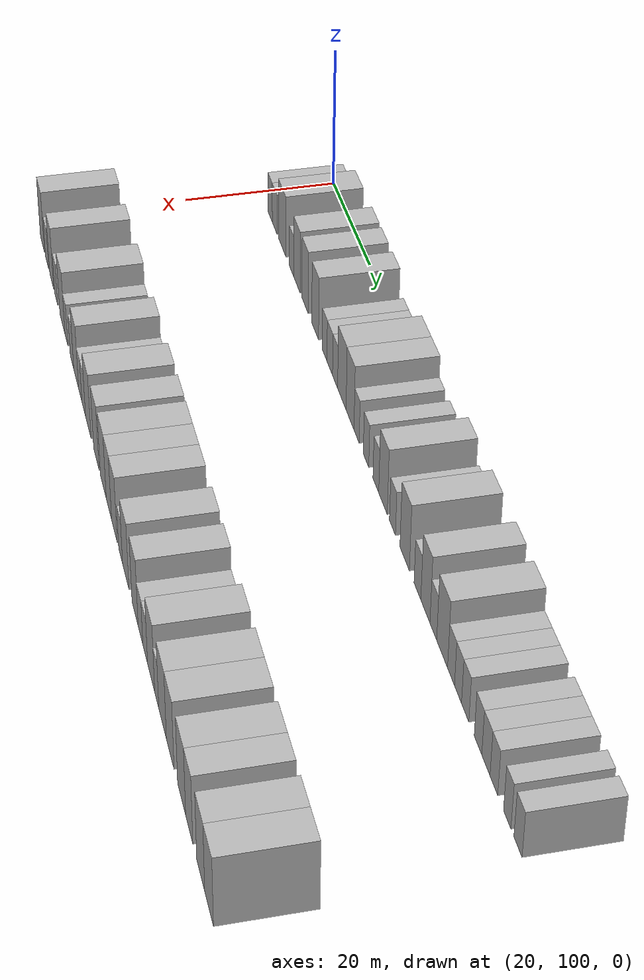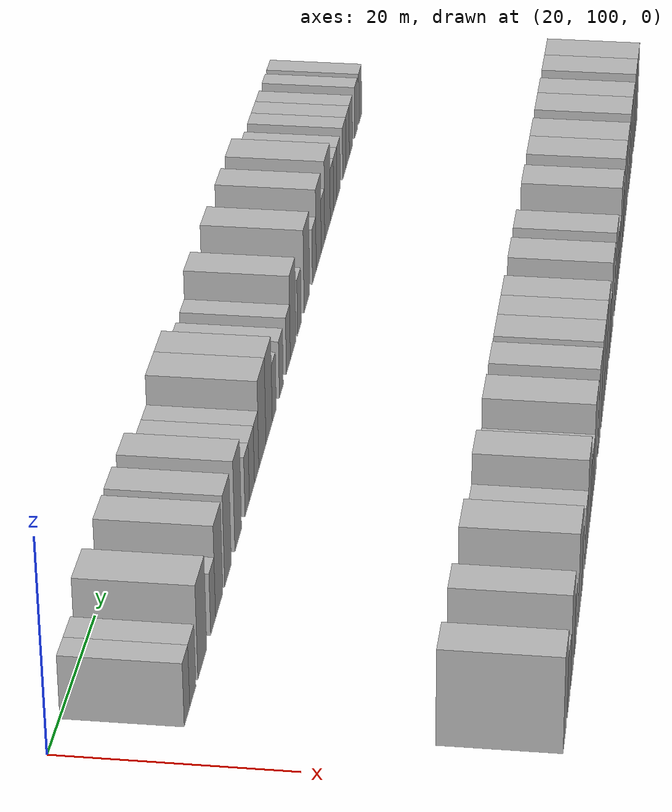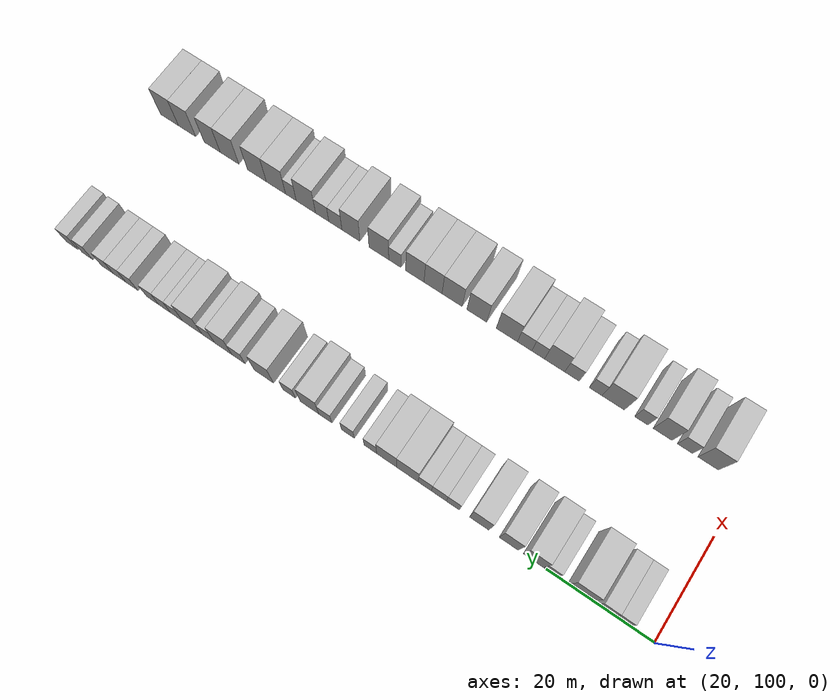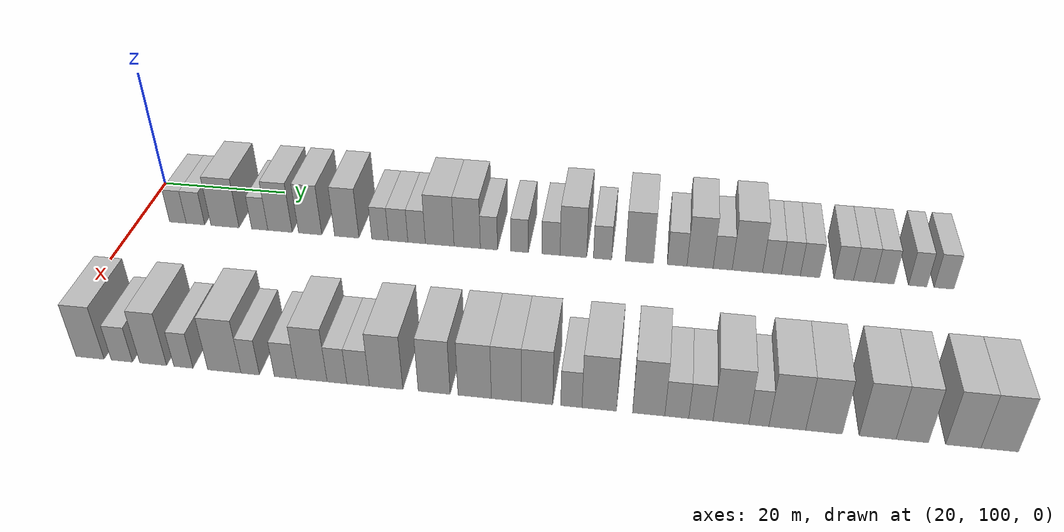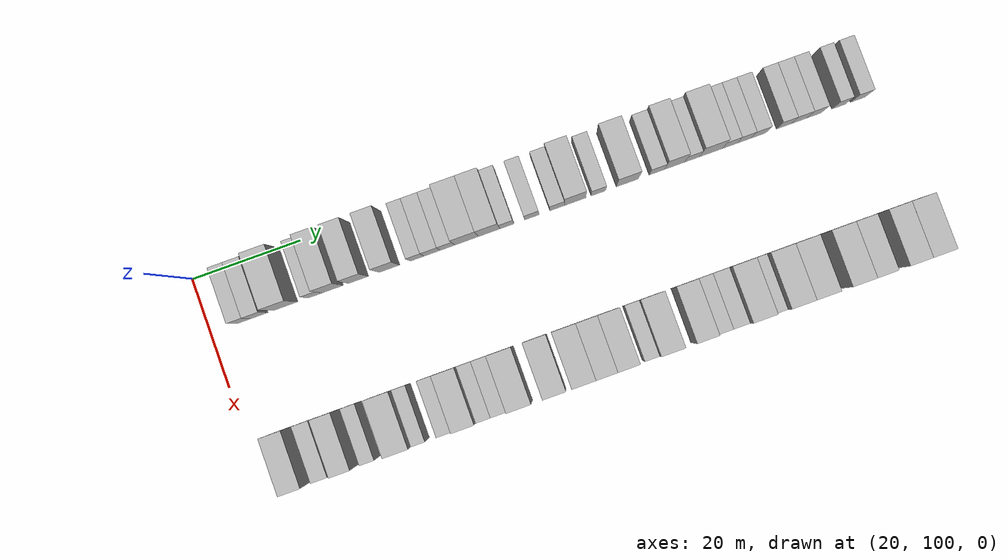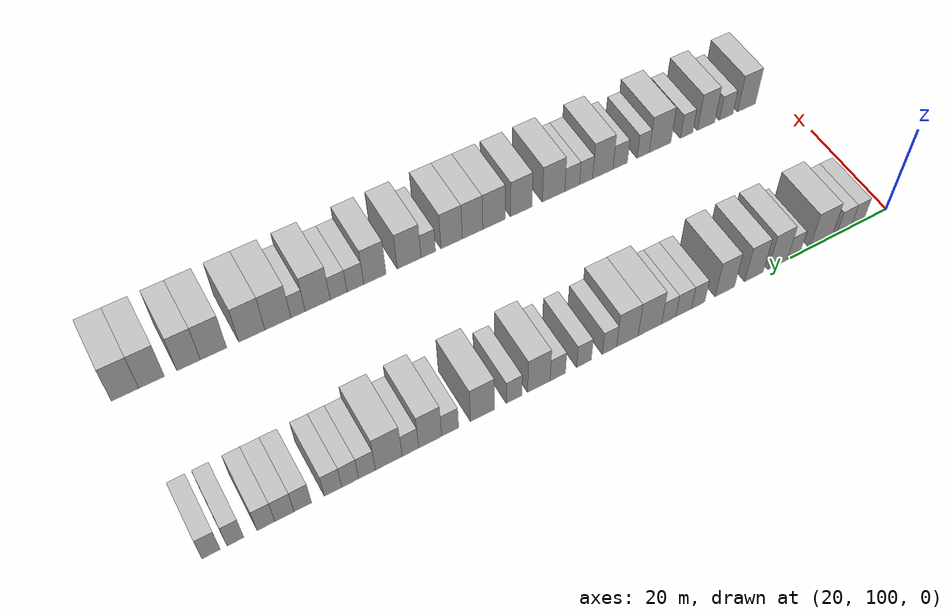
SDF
<sdf version="1.6">
 <world name="default">
  <model name="building_87">
   <static>1</static>
   <pose>25.0000 106.2497 0 0.000000 0.000000 0.000000</pose>
   <link name="link">
    <pose>0 0 3.00 0 0 0</pose>
    <collision name="collision"><geometry><box><size>10.0000 2.6665 6.0000</size></box></geometry></collision>
    <visual name="visual">
     <cast_shadows>0</cast_shadows>
     <geometry><box><size>10.0000 2.6665 6.0000</size></box></geometry>
     <material>
      <script>
       <uri>model://HANNAS_wall/materials/scripts</uri>
       <uri>model://HANNAS_wall/materials/textures</uri>
       <name>vrc/HANNAS_wall</name>
      </script>
     </material>
    </visual>
   </link>
  </model>
  <model name="building_88">
   <static>1</static>
   <pose>25.0000 109.0697 0 0.000000 0.000000 0.000000</pose>
   <link name="link">
    <pose>0 0 3.00 0 0 0</pose>
    <collision name="collision"><geometry><box><size>10.0000 2.9735 6.0000</size></box></geometry></collision>
    <visual name="visual">
     <cast_shadows>0</cast_shadows>
     <geometry><box><size>10.0000 2.9735 6.0000</size></box></geometry>
     <material>
      <script>
       <uri>model://HANNAS_wall/materials/scripts</uri>
       <uri>model://HANNAS_wall/materials/textures</uri>
       <name>vrc/HANNAS_wall</name>
      </script>
     </material>
    </visual>
   </link>
  </model>
  <model name="building_89">
   <static>1</static>
   <pose>25.0000 113.8046 0 0.000000 0.000000 0.000000</pose>
   <link name="link">
    <pose>0 0 4.50 0 0 0</pose>
    <collision name="collision"><geometry><box><size>10.0000 4.4964 9.0000</size></box></geometry></collision>
    <visual name="visual">
     <cast_shadows>0</cast_shadows>
     <geometry><box><size>10.0000 4.4964 9.0000</size></box></geometry>
     <material>
      <script>
       <uri>model://HANNAS_wall/materials/scripts</uri>
       <uri>model://HANNAS_wall/materials/textures</uri>
       <name>vrc/HANNAS_wall</name>
      </script>
     </material>
    </visual>
   </link>
  </model>
  <model name="building_90">
   <static>1</static>
   <pose>25.0000 119.3390 0 0.000000 0.000000 0.000000</pose>
   <link name="link">
    <pose>0 0 3.00 0 0 0</pose>
    <collision name="collision"><geometry><box><size>10.0000 2.5724 6.0000</size></box></geometry></collision>
    <visual name="visual">
     <cast_shadows>0</cast_shadows>
     <geometry><box><size>10.0000 2.5724 6.0000</size></box></geometry>
     <material>
      <script>
       <uri>model://HANNAS_wall/materials/scripts</uri>
       <uri>model://HANNAS_wall/materials/textures</uri>
       <name>vrc/HANNAS_wall</name>
      </script>
     </material>
    </visual>
   </link>
  </model>
  <model name="building_91">
   <static>1</static>
   <pose>25.0000 122.5465 0 0.000000 0.000000 0.000000</pose>
   <link name="link">
    <pose>0 0 4.50 0 0 0</pose>
    <collision name="collision"><geometry><box><size>10.0000 3.8426 9.0000</size></box></geometry></collision>
    <visual name="visual">
     <cast_shadows>0</cast_shadows>
     <geometry><box><size>10.0000 3.8426 9.0000</size></box></geometry>
     <material>
      <script>
       <uri>model://HANNAS_wall/materials/scripts</uri>
       <uri>model://HANNAS_wall/materials/textures</uri>
       <name>vrc/HANNAS_wall</name>
      </script>
     </material>
    </visual>
   </link>
  </model>
  <model name="building_92">
   <static>1</static>
   <pose>25.0000 127.2949 0 0.000000 0.000000 0.000000</pose>
   <link name="link">
    <pose>0 0 4.50 0 0 0</pose>
    <collision name="collision"><geometry><box><size>10.0000 3.6543 9.0000</size></box></geometry></collision>
    <visual name="visual">
     <cast_shadows>0</cast_shadows>
     <geometry><box><size>10.0000 3.6543 9.0000</size></box></geometry>
     <material>
      <script>
       <uri>model://HANNAS_wall/materials/scripts</uri>
       <uri>model://HANNAS_wall/materials/textures</uri>
       <name>vrc/HANNAS_wall</name>
      </script>
     </material>
    </visual>
   </link>
  </model>
  <model name="building_93">
   <static>1</static>
   <pose>25.0000 133.0107 0 0.000000 0.000000 0.000000</pose>
   <link name="link">
    <pose>0 0 4.50 0 0 0</pose>
    <collision name="collision"><geometry><box><size>10.0000 3.7772 9.0000</size></box></geometry></collision>
    <visual name="visual">
     <cast_shadows>0</cast_shadows>
     <geometry><box><size>10.0000 3.7772 9.0000</size></box></geometry>
     <material>
      <script>
       <uri>model://HANNAS_wall/materials/scripts</uri>
       <uri>model://HANNAS_wall/materials/textures</uri>
       <name>vrc/HANNAS_wall</name>
      </script>
     </material>
    </visual>
   </link>
  </model>
  <model name="building_94">
   <static>1</static>
   <pose>25.0000 138.1841 0 0.000000 0.000000 0.000000</pose>
   <link name="link">
    <pose>0 0 3.00 0 0 0</pose>
    <collision name="collision"><geometry><box><size>10.0000 2.5696 6.0000</size></box></geometry></collision>
    <visual name="visual">
     <cast_shadows>0</cast_shadows>
     <geometry><box><size>10.0000 2.5696 6.0000</size></box></geometry>
     <material>
      <script>
       <uri>model://HANNAS_wall/materials/scripts</uri>
       <uri>model://HANNAS_wall/materials/textures</uri>
       <name>vrc/HANNAS_wall</name>
      </script>
     </material>
    </visual>
   </link>
  </model>
  <model name="building_95">
   <static>1</static>
   <pose>25.0000 140.9648 0 0.000000 0.000000 0.000000</pose>
   <link name="link">
    <pose>0 0 3.00 0 0 0</pose>
    <collision name="collision"><geometry><box><size>10.0000 2.9919 6.0000</size></box></geometry></collision>
    <visual name="visual">
     <cast_shadows>0</cast_shadows>
     <geometry><box><size>10.0000 2.9919 6.0000</size></box></geometry>
     <material>
      <script>
       <uri>model://HANNAS_wall/materials/scripts</uri>
       <uri>model://HANNAS_wall/materials/textures</uri>
       <name>vrc/HANNAS_wall</name>
      </script>
     </material>
    </visual>
   </link>
  </model>
  <model name="building_96">
   <static>1</static>
   <pose>25.0000 143.8011 0 0.000000 0.000000 0.000000</pose>
   <link name="link">
    <pose>0 0 3.00 0 0 0</pose>
    <collision name="collision"><geometry><box><size>10.0000 2.6808 6.0000</size></box></geometry></collision>
    <visual name="visual">
     <cast_shadows>0</cast_shadows>
     <geometry><box><size>10.0000 2.6808 6.0000</size></box></geometry>
     <material>
      <script>
       <uri>model://HANNAS_wall/materials/scripts</uri>
       <uri>model://HANNAS_wall/materials/textures</uri>
       <name>vrc/HANNAS_wall</name>
      </script>
     </material>
    </visual>
   </link>
  </model>
  <model name="building_97">
   <static>1</static>
   <pose>25.0000 147.3322 0 0.000000 0.000000 0.000000</pose>
   <link name="link">
    <pose>0 0 4.50 0 0 0</pose>
    <collision name="collision"><geometry><box><size>10.0000 4.3813 9.0000</size></box></geometry></collision>
    <visual name="visual">
     <cast_shadows>0</cast_shadows>
     <geometry><box><size>10.0000 4.3813 9.0000</size></box></geometry>
     <material>
      <script>
       <uri>model://HANNAS_wall/materials/scripts</uri>
       <uri>model://HANNAS_wall/materials/textures</uri>
       <name>vrc/HANNAS_wall</name>
      </script>
     </material>
    </visual>
   </link>
  </model>
  <model name="building_98">
   <static>1</static>
   <pose>25.0000 151.5172 0 0.000000 0.000000 0.000000</pose>
   <link name="link">
    <pose>0 0 4.50 0 0 0</pose>
    <collision name="collision"><geometry><box><size>10.0000 3.9888 9.0000</size></box></geometry></collision>
    <visual name="visual">
     <cast_shadows>0</cast_shadows>
     <geometry><box><size>10.0000 3.9888 9.0000</size></box></geometry>
     <material>
      <script>
       <uri>model://HANNAS_wall/materials/scripts</uri>
       <uri>model://HANNAS_wall/materials/textures</uri>
       <name>vrc/HANNAS_wall</name>
      </script>
     </material>
    </visual>
   </link>
  </model>
  <model name="building_99">
   <static>1</static>
   <pose>25.0000 154.8065 0 0.000000 0.000000 0.000000</pose>
   <link name="link">
    <pose>0 0 3.00 0 0 0</pose>
    <collision name="collision"><geometry><box><size>10.0000 2.5898 6.0000</size></box></geometry></collision>
    <visual name="visual">
     <cast_shadows>0</cast_shadows>
     <geometry><box><size>10.0000 2.5898 6.0000</size></box></geometry>
     <material>
      <script>
       <uri>model://HANNAS_wall/materials/scripts</uri>
       <uri>model://HANNAS_wall/materials/textures</uri>
       <name>vrc/HANNAS_wall</name>
      </script>
     </material>
    </visual>
   </link>
  </model>
  <model name="building_100">
   <static>1</static>
   <pose>25.0000 159.4271 0 0.000000 0.000000 0.000000</pose>
   <link name="link">
    <pose>0 0 3.00 0 0 0</pose>
    <collision name="collision"><geometry><box><size>10.0000 2.6514 6.0000</size></box></geometry></collision>
    <visual name="visual">
     <cast_shadows>0</cast_shadows>
     <geometry><box><size>10.0000 2.6514 6.0000</size></box></geometry>
     <material>
      <script>
       <uri>model://HANNAS_wall/materials/scripts</uri>
       <uri>model://HANNAS_wall/materials/textures</uri>
       <name>vrc/HANNAS_wall</name>
      </script>
     </material>
    </visual>
   </link>
  </model>
  <model name="building_101">
   <static>1</static>
   <pose>25.0000 164.1142 0 0.000000 0.000000 0.000000</pose>
   <link name="link">
    <pose>0 0 3.00 0 0 0</pose>
    <collision name="collision"><geometry><box><size>10.0000 2.7228 6.0000</size></box></geometry></collision>
    <visual name="visual">
     <cast_shadows>0</cast_shadows>
     <geometry><box><size>10.0000 2.7228 6.0000</size></box></geometry>
     <material>
      <script>
       <uri>model://HANNAS_wall/materials/scripts</uri>
       <uri>model://HANNAS_wall/materials/textures</uri>
       <name>vrc/HANNAS_wall</name>
      </script>
     </material>
    </visual>
   </link>
  </model>
  <model name="building_102">
   <static>1</static>
   <pose>25.0000 167.4475 0 0.000000 0.000000 0.000000</pose>
   <link name="link">
    <pose>0 0 4.50 0 0 0</pose>
    <collision name="collision"><geometry><box><size>10.0000 3.9439 9.0000</size></box></geometry></collision>
    <visual name="visual">
     <cast_shadows>0</cast_shadows>
     <geometry><box><size>10.0000 3.9439 9.0000</size></box></geometry>
     <material>
      <script>
       <uri>model://HANNAS_wall/materials/scripts</uri>
       <uri>model://HANNAS_wall/materials/textures</uri>
       <name>vrc/HANNAS_wall</name>
      </script>
     </material>
    </visual>
   </link>
  </model>
  <model name="building_103">
   <static>1</static>
   <pose>25.0000 171.7697 0 0.000000 0.000000 0.000000</pose>
   <link name="link">
    <pose>0 0 3.00 0 0 0</pose>
    <collision name="collision"><geometry><box><size>10.0000 2.7006 6.0000</size></box></geometry></collision>
    <visual name="visual">
     <cast_shadows>0</cast_shadows>
     <geometry><box><size>10.0000 2.7006 6.0000</size></box></geometry>
     <material>
      <script>
       <uri>model://HANNAS_wall/materials/scripts</uri>
       <uri>model://HANNAS_wall/materials/textures</uri>
       <name>vrc/HANNAS_wall</name>
      </script>
     </material>
    </visual>
   </link>
  </model>
  <model name="building_104">
   <static>1</static>
   <pose>25.0000 177.1848 0 0.000000 0.000000 0.000000</pose>
   <link name="link">
    <pose>0 0 4.50 0 0 0</pose>
    <collision name="collision"><geometry><box><size>10.0000 4.1296 9.0000</size></box></geometry></collision>
    <visual name="visual">
     <cast_shadows>0</cast_shadows>
     <geometry><box><size>10.0000 4.1296 9.0000</size></box></geometry>
     <material>
      <script>
       <uri>model://HANNAS_wall/materials/scripts</uri>
       <uri>model://HANNAS_wall/materials/textures</uri>
       <name>vrc/HANNAS_wall</name>
      </script>
     </material>
    </visual>
   </link>
  </model>
  <model name="building_105">
   <static>1</static>
   <pose>25.0000 182.6782 0 0.000000 0.000000 0.000000</pose>
   <link name="link">
    <pose>0 0 3.00 0 0 0</pose>
    <collision name="collision"><geometry><box><size>10.0000 2.8571 6.0000</size></box></geometry></collision>
    <visual name="visual">
     <cast_shadows>0</cast_shadows>
     <geometry><box><size>10.0000 2.8571 6.0000</size></box></geometry>
     <material>
      <script>
       <uri>model://HANNAS_wall/materials/scripts</uri>
       <uri>model://HANNAS_wall/materials/textures</uri>
       <name>vrc/HANNAS_wall</name>
      </script>
     </material>
    </visual>
   </link>
  </model>
  <model name="building_106">
   <static>1</static>
   <pose>25.0000 186.0044 0 0.000000 0.000000 0.000000</pose>
   <link name="link">
    <pose>0 0 4.50 0 0 0</pose>
    <collision name="collision"><geometry><box><size>10.0000 3.7953 9.0000</size></box></geometry></collision>
    <visual name="visual">
     <cast_shadows>0</cast_shadows>
     <geometry><box><size>10.0000 3.7953 9.0000</size></box></geometry>
     <material>
      <script>
       <uri>model://HANNAS_wall/materials/scripts</uri>
       <uri>model://HANNAS_wall/materials/textures</uri>
       <name>vrc/HANNAS_wall</name>
      </script>
     </material>
    </visual>
   </link>
  </model>
  <model name="building_107">
   <static>1</static>
   <pose>25.0000 189.2682 0 0.000000 0.000000 0.000000</pose>
   <link name="link">
    <pose>0 0 3.00 0 0 0</pose>
    <collision name="collision"><geometry><box><size>10.0000 2.7324 6.0000</size></box></geometry></collision>
    <visual name="visual">
     <cast_shadows>0</cast_shadows>
     <geometry><box><size>10.0000 2.7324 6.0000</size></box></geometry>
     <material>
      <script>
       <uri>model://HANNAS_wall/materials/scripts</uri>
       <uri>model://HANNAS_wall/materials/textures</uri>
       <name>vrc/HANNAS_wall</name>
      </script>
     </material>
    </visual>
   </link>
  </model>
  <model name="building_108">
   <static>1</static>
   <pose>25.0000 192.8067 0 0.000000 0.000000 0.000000</pose>
   <link name="link">
    <pose>0 0 4.50 0 0 0</pose>
    <collision name="collision"><geometry><box><size>10.0000 4.3445 9.0000</size></box></geometry></collision>
    <visual name="visual">
     <cast_shadows>0</cast_shadows>
     <geometry><box><size>10.0000 4.3445 9.0000</size></box></geometry>
     <material>
      <script>
       <uri>model://HANNAS_wall/materials/scripts</uri>
       <uri>model://HANNAS_wall/materials/textures</uri>
       <name>vrc/HANNAS_wall</name>
      </script>
     </material>
    </visual>
   </link>
  </model>
  <model name="building_109">
   <static>1</static>
   <pose>25.0000 196.3278 0 0.000000 0.000000 0.000000</pose>
   <link name="link">
    <pose>0 0 3.00 0 0 0</pose>
    <collision name="collision"><geometry><box><size>10.0000 2.6976 6.0000</size></box></geometry></collision>
    <visual name="visual">
     <cast_shadows>0</cast_shadows>
     <geometry><box><size>10.0000 2.6976 6.0000</size></box></geometry>
     <material>
      <script>
       <uri>model://HANNAS_wall/materials/scripts</uri>
       <uri>model://HANNAS_wall/materials/textures</uri>
       <name>vrc/HANNAS_wall</name>
      </script>
     </material>
    </visual>
   </link>
  </model>
  <model name="building_110">
   <static>1</static>
   <pose>25.0000 199.0196 0 0.000000 0.000000 0.000000</pose>
   <link name="link">
    <pose>0 0 3.00 0 0 0</pose>
    <collision name="collision"><geometry><box><size>10.0000 2.6861 6.0000</size></box></geometry></collision>
    <visual name="visual">
     <cast_shadows>0</cast_shadows>
     <geometry><box><size>10.0000 2.6861 6.0000</size></box></geometry>
     <material>
      <script>
       <uri>model://HANNAS_wall/materials/scripts</uri>
       <uri>model://HANNAS_wall/materials/textures</uri>
       <name>vrc/HANNAS_wall</name>
      </script>
     </material>
    </visual>
   </link>
  </model>
  <model name="building_111">
   <static>1</static>
   <pose>25.0000 201.7484 0 0.000000 0.000000 0.000000</pose>
   <link name="link">
    <pose>0 0 3.00 0 0 0</pose>
    <collision name="collision"><geometry><box><size>10.0000 2.7716 6.0000</size></box></geometry></collision>
    <visual name="visual">
     <cast_shadows>0</cast_shadows>
     <geometry><box><size>10.0000 2.7716 6.0000</size></box></geometry>
     <material>
      <script>
       <uri>model://HANNAS_wall/materials/scripts</uri>
       <uri>model://HANNAS_wall/materials/textures</uri>
       <name>vrc/HANNAS_wall</name>
      </script>
     </material>
    </visual>
   </link>
  </model>
  <model name="building_112">
   <static>1</static>
   <pose>25.0000 206.5028 0 0.000000 0.000000 0.000000</pose>
   <link name="link">
    <pose>0 0 3.00 0 0 0</pose>
    <collision name="collision"><geometry><box><size>10.0000 2.7372 6.0000</size></box></geometry></collision>
    <visual name="visual">
     <cast_shadows>0</cast_shadows>
     <geometry><box><size>10.0000 2.7372 6.0000</size></box></geometry>
     <material>
      <script>
       <uri>model://HANNAS_wall/materials/scripts</uri>
       <uri>model://HANNAS_wall/materials/textures</uri>
       <name>vrc/HANNAS_wall</name>
      </script>
     </material>
    </visual>
   </link>
  </model>
  <model name="building_113">
   <static>1</static>
   <pose>25.0000 209.3496 0 0.000000 0.000000 0.000000</pose>
   <link name="link">
    <pose>0 0 3.00 0 0 0</pose>
    <collision name="collision"><geometry><box><size>10.0000 2.9563 6.0000</size></box></geometry></collision>
    <visual name="visual">
     <cast_shadows>0</cast_shadows>
     <geometry><box><size>10.0000 2.9563 6.0000</size></box></geometry>
     <material>
      <script>
       <uri>model://HANNAS_wall/materials/scripts</uri>
       <uri>model://HANNAS_wall/materials/textures</uri>
       <name>vrc/HANNAS_wall</name>
      </script>
     </material>
    </visual>
   </link>
  </model>
  <model name="building_114">
   <static>1</static>
   <pose>25.0000 212.1903 0 0.000000 0.000000 0.000000</pose>
   <link name="link">
    <pose>0 0 3.00 0 0 0</pose>
    <collision name="collision"><geometry><box><size>10.0000 2.7252 6.0000</size></box></geometry></collision>
    <visual name="visual">
     <cast_shadows>0</cast_shadows>
     <geometry><box><size>10.0000 2.7252 6.0000</size></box></geometry>
     <material>
      <script>
       <uri>model://HANNAS_wall/materials/scripts</uri>
       <uri>model://HANNAS_wall/materials/textures</uri>
       <name>vrc/HANNAS_wall</name>
      </script>
     </material>
    </visual>
   </link>
  </model>
  <model name="building_115">
   <static>1</static>
   <pose>25.0000 216.8197 0 0.000000 0.000000 0.000000</pose>
   <link name="link">
    <pose>0 0 3.00 0 0 0</pose>
    <collision name="collision"><geometry><box><size>10.0000 2.5337 6.0000</size></box></geometry></collision>
    <visual name="visual">
     <cast_shadows>0</cast_shadows>
     <geometry><box><size>10.0000 2.5337 6.0000</size></box></geometry>
     <material>
      <script>
       <uri>model://HANNAS_wall/materials/scripts</uri>
       <uri>model://HANNAS_wall/materials/textures</uri>
       <name>vrc/HANNAS_wall</name>
      </script>
     </material>
    </visual>
   </link>
  </model>
  <model name="building_116">
   <static>1</static>
   <pose>25.0000 220.4525 0 0.000000 0.000000 0.000000</pose>
   <link name="link">
    <pose>0 0 3.00 0 0 0</pose>
    <collision name="collision"><geometry><box><size>10.0000 2.7319 6.0000</size></box></geometry></collision>
    <visual name="visual">
     <cast_shadows>0</cast_shadows>
     <geometry><box><size>10.0000 2.7319 6.0000</size></box></geometry>
     <material>
      <script>
       <uri>model://HANNAS_wall/materials/scripts</uri>
       <uri>model://HANNAS_wall/materials/textures</uri>
       <name>vrc/HANNAS_wall</name>
      </script>
     </material>
    </visual>
   </link>
  </model>
  <model name="building_203">
   <static>1</static>
   <pose>55.0000 106.6032 0 0.000000 0.000000 0.000000</pose>
   <link name="link">
    <pose>0 0 4.50 0 0 0</pose>
    <collision name="collision"><geometry><box><size>10.0000 3.9020 9.0000</size></box></geometry></collision>
    <visual name="visual">
     <cast_shadows>0</cast_shadows>
     <geometry><box><size>10.0000 3.9020 9.0000</size></box></geometry>
     <material>
      <script>
       <uri>model://HANNAS_wall/materials/scripts</uri>
       <uri>model://HANNAS_wall/materials/textures</uri>
       <name>vrc/HANNAS_wall</name>
      </script>
     </material>
    </visual>
   </link>
  </model>
  <model name="building_204">
   <static>1</static>
   <pose>55.0000 111.0250 0 0.000000 0.000000 0.000000</pose>
   <link name="link">
    <pose>0 0 3.00 0 0 0</pose>
    <collision name="collision"><geometry><box><size>10.0000 2.9415 6.0000</size></box></geometry></collision>
    <visual name="visual">
     <cast_shadows>0</cast_shadows>
     <geometry><box><size>10.0000 2.9415 6.0000</size></box></geometry>
     <material>
      <script>
       <uri>model://HANNAS_wall/materials/scripts</uri>
       <uri>model://HANNAS_wall/materials/textures</uri>
       <name>vrc/HANNAS_wall</name>
      </script>
     </material>
    </visual>
   </link>
  </model>
  <model name="building_205">
   <static>1</static>
   <pose>55.0000 115.3331 0 0.000000 0.000000 0.000000</pose>
   <link name="link">
    <pose>0 0 4.50 0 0 0</pose>
    <collision name="collision"><geometry><box><size>10.0000 3.6749 9.0000</size></box></geometry></collision>
    <visual name="visual">
     <cast_shadows>0</cast_shadows>
     <geometry><box><size>10.0000 3.6749 9.0000</size></box></geometry>
     <material>
      <script>
       <uri>model://HANNAS_wall/materials/scripts</uri>
       <uri>model://HANNAS_wall/materials/textures</uri>
       <name>vrc/HANNAS_wall</name>
      </script>
     </material>
    </visual>
   </link>
  </model>
  <model name="building_206">
   <static>1</static>
   <pose>55.0000 119.4749 0 0.000000 0.000000 0.000000</pose>
   <link name="link">
    <pose>0 0 3.00 0 0 0</pose>
    <collision name="collision"><geometry><box><size>10.0000 2.6087 6.0000</size></box></geometry></collision>
    <visual name="visual">
     <cast_shadows>0</cast_shadows>
     <geometry><box><size>10.0000 2.6087 6.0000</size></box></geometry>
     <material>
      <script>
       <uri>model://HANNAS_wall/materials/scripts</uri>
       <uri>model://HANNAS_wall/materials/textures</uri>
       <name>vrc/HANNAS_wall</name>
      </script>
     </material>
    </visual>
   </link>
  </model>
  <model name="building_207">
   <static>1</static>
   <pose>55.0000 125.0289 0 0.000000 0.000000 0.000000</pose>
   <link name="link">
    <pose>0 0 4.50 0 0 0</pose>
    <collision name="collision"><geometry><box><size>10.0000 4.4993 9.0000</size></box></geometry></collision>
    <visual name="visual">
     <cast_shadows>0</cast_shadows>
     <geometry><box><size>10.0000 4.4993 9.0000</size></box></geometry>
     <material>
      <script>
       <uri>model://HANNAS_wall/materials/scripts</uri>
       <uri>model://HANNAS_wall/materials/textures</uri>
       <name>vrc/HANNAS_wall</name>
      </script>
     </material>
    </visual>
   </link>
  </model>
  <model name="building_208">
   <static>1</static>
   <pose>55.0000 128.5236 0 0.000000 0.000000 0.000000</pose>
   <link name="link">
    <pose>0 0 3.00 0 0 0</pose>
    <collision name="collision"><geometry><box><size>10.0000 2.4902 6.0000</size></box></geometry></collision>
    <visual name="visual">
     <cast_shadows>0</cast_shadows>
     <geometry><box><size>10.0000 2.4902 6.0000</size></box></geometry>
     <material>
      <script>
       <uri>model://HANNAS_wall/materials/scripts</uri>
       <uri>model://HANNAS_wall/materials/textures</uri>
       <name>vrc/HANNAS_wall</name>
      </script>
     </material>
    </visual>
   </link>
  </model>
  <model name="building_209">
   <static>1</static>
   <pose>55.0000 133.2418 0 0.000000 0.000000 0.000000</pose>
   <link name="link">
    <pose>0 0 3.00 0 0 0</pose>
    <collision name="collision"><geometry><box><size>10.0000 2.9462 6.0000</size></box></geometry></collision>
    <visual name="visual">
     <cast_shadows>0</cast_shadows>
     <geometry><box><size>10.0000 2.9462 6.0000</size></box></geometry>
     <material>
      <script>
       <uri>model://HANNAS_wall/materials/scripts</uri>
       <uri>model://HANNAS_wall/materials/textures</uri>
       <name>vrc/HANNAS_wall</name>
      </script>
     </material>
    </visual>
   </link>
  </model>
  <model name="building_210">
   <static>1</static>
   <pose>55.0000 136.7533 0 0.000000 0.000000 0.000000</pose>
   <link name="link">
    <pose>0 0 4.50 0 0 0</pose>
    <collision name="collision"><geometry><box><size>10.0000 4.0767 9.0000</size></box></geometry></collision>
    <visual name="visual">
     <cast_shadows>0</cast_shadows>
     <geometry><box><size>10.0000 4.0767 9.0000</size></box></geometry>
     <material>
      <script>
       <uri>model://HANNAS_wall/materials/scripts</uri>
       <uri>model://HANNAS_wall/materials/textures</uri>
       <name>vrc/HANNAS_wall</name>
      </script>
     </material>
    </visual>
   </link>
  </model>
  <model name="building_211">
   <static>1</static>
   <pose>55.0000 140.0968 0 0.000000 0.000000 0.000000</pose>
   <link name="link">
    <pose>0 0 3.00 0 0 0</pose>
    <collision name="collision"><geometry><box><size>10.0000 2.6103 6.0000</size></box></geometry></collision>
    <visual name="visual">
     <cast_shadows>0</cast_shadows>
     <geometry><box><size>10.0000 2.6103 6.0000</size></box></geometry>
     <material>
      <script>
       <uri>model://HANNAS_wall/materials/scripts</uri>
       <uri>model://HANNAS_wall/materials/textures</uri>
       <name>vrc/HANNAS_wall</name>
      </script>
     </material>
    </visual>
   </link>
  </model>
  <model name="building_212">
   <static>1</static>
   <pose>55.0000 142.8765 0 0.000000 0.000000 0.000000</pose>
   <link name="link">
    <pose>0 0 3.00 0 0 0</pose>
    <collision name="collision"><geometry><box><size>10.0000 2.9491 6.0000</size></box></geometry></collision>
    <visual name="visual">
     <cast_shadows>0</cast_shadows>
     <geometry><box><size>10.0000 2.9491 6.0000</size></box></geometry>
     <material>
      <script>
       <uri>model://HANNAS_wall/materials/scripts</uri>
       <uri>model://HANNAS_wall/materials/textures</uri>
       <name>vrc/HANNAS_wall</name>
      </script>
     </material>
    </visual>
   </link>
  </model>
  <model name="building_213">
   <static>1</static>
   <pose>55.0000 146.5443 0 0.000000 0.000000 0.000000</pose>
   <link name="link">
    <pose>0 0 4.50 0 0 0</pose>
    <collision name="collision"><geometry><box><size>10.0000 4.3867 9.0000</size></box></geometry></collision>
    <visual name="visual">
     <cast_shadows>0</cast_shadows>
     <geometry><box><size>10.0000 4.3867 9.0000</size></box></geometry>
     <material>
      <script>
       <uri>model://HANNAS_wall/materials/scripts</uri>
       <uri>model://HANNAS_wall/materials/textures</uri>
       <name>vrc/HANNAS_wall</name>
      </script>
     </material>
    </visual>
   </link>
  </model>
  <model name="building_214">
   <static>1</static>
   <pose>55.0000 152.8055 0 0.000000 0.000000 0.000000</pose>
   <link name="link">
    <pose>0 0 4.50 0 0 0</pose>
    <collision name="collision"><geometry><box><size>10.0000 4.1356 9.0000</size></box></geometry></collision>
    <visual name="visual">
     <cast_shadows>0</cast_shadows>
     <geometry><box><size>10.0000 4.1356 9.0000</size></box></geometry>
     <material>
      <script>
       <uri>model://HANNAS_wall/materials/scripts</uri>
       <uri>model://HANNAS_wall/materials/textures</uri>
       <name>vrc/HANNAS_wall</name>
      </script>
     </material>
    </visual>
   </link>
  </model>
  <model name="building_215">
   <static>1</static>
   <pose>55.0000 158.0130 0 0.000000 0.000000 0.000000</pose>
   <link name="link">
    <pose>0 0 4.50 0 0 0</pose>
    <collision name="collision"><geometry><box><size>10.0000 4.2795 9.0000</size></box></geometry></collision>
    <visual name="visual">
     <cast_shadows>0</cast_shadows>
     <geometry><box><size>10.0000 4.2795 9.0000</size></box></geometry>
     <material>
      <script>
       <uri>model://HANNAS_wall/materials/scripts</uri>
       <uri>model://HANNAS_wall/materials/textures</uri>
       <name>vrc/HANNAS_wall</name>
      </script>
     </material>
    </visual>
   </link>
  </model>
  <model name="building_216">
   <static>1</static>
   <pose>55.0000 162.0766 0 0.000000 0.000000 0.000000</pose>
   <link name="link">
    <pose>0 0 4.50 0 0 0</pose>
    <collision name="collision"><geometry><box><size>10.0000 3.8479 9.0000</size></box></geometry></collision>
    <visual name="visual">
     <cast_shadows>0</cast_shadows>
     <geometry><box><size>10.0000 3.8479 9.0000</size></box></geometry>
     <material>
      <script>
       <uri>model://HANNAS_wall/materials/scripts</uri>
       <uri>model://HANNAS_wall/materials/textures</uri>
       <name>vrc/HANNAS_wall</name>
      </script>
     </material>
    </visual>
   </link>
  </model>
  <model name="building_217">
   <static>1</static>
   <pose>55.0000 165.9789 0 0.000000 0.000000 0.000000</pose>
   <link name="link">
    <pose>0 0 4.50 0 0 0</pose>
    <collision name="collision"><geometry><box><size>10.0000 3.9567 9.0000</size></box></geometry></collision>
    <visual name="visual">
     <cast_shadows>0</cast_shadows>
     <geometry><box><size>10.0000 3.9567 9.0000</size></box></geometry>
     <material>
      <script>
       <uri>model://HANNAS_wall/materials/scripts</uri>
       <uri>model://HANNAS_wall/materials/textures</uri>
       <name>vrc/HANNAS_wall</name>
      </script>
     </material>
    </visual>
   </link>
  </model>
  <model name="building_218">
   <static>1</static>
   <pose>55.0000 170.2947 0 0.000000 0.000000 0.000000</pose>
   <link name="link">
    <pose>0 0 3.00 0 0 0</pose>
    <collision name="collision"><geometry><box><size>10.0000 2.6749 6.0000</size></box></geometry></collision>
    <visual name="visual">
     <cast_shadows>0</cast_shadows>
     <geometry><box><size>10.0000 2.6749 6.0000</size></box></geometry>
     <material>
      <script>
       <uri>model://HANNAS_wall/materials/scripts</uri>
       <uri>model://HANNAS_wall/materials/textures</uri>
       <name>vrc/HANNAS_wall</name>
      </script>
     </material>
    </visual>
   </link>
  </model>
  <model name="building_219">
   <static>1</static>
   <pose>55.0000 173.7905 0 0.000000 0.000000 0.000000</pose>
   <link name="link">
    <pose>0 0 4.50 0 0 0</pose>
    <collision name="collision"><geometry><box><size>10.0000 4.3166 9.0000</size></box></geometry></collision>
    <visual name="visual">
     <cast_shadows>0</cast_shadows>
     <geometry><box><size>10.0000 4.3166 9.0000</size></box></geometry>
     <material>
      <script>
       <uri>model://HANNAS_wall/materials/scripts</uri>
       <uri>model://HANNAS_wall/materials/textures</uri>
       <name>vrc/HANNAS_wall</name>
      </script>
     </material>
    </visual>
   </link>
  </model>
  <model name="building_220">
   <static>1</static>
   <pose>55.0000 179.9399 0 0.000000 0.000000 0.000000</pose>
   <link name="link">
    <pose>0 0 4.50 0 0 0</pose>
    <collision name="collision"><geometry><box><size>10.0000 3.9823 9.0000</size></box></geometry></collision>
    <visual name="visual">
     <cast_shadows>0</cast_shadows>
     <geometry><box><size>10.0000 3.9823 9.0000</size></box></geometry>
     <material>
      <script>
       <uri>model://HANNAS_wall/materials/scripts</uri>
       <uri>model://HANNAS_wall/materials/textures</uri>
       <name>vrc/HANNAS_wall</name>
      </script>
     </material>
    </visual>
   </link>
  </model>
  <model name="building_221">
   <static>1</static>
   <pose>55.0000 183.4056 0 0.000000 0.000000 0.000000</pose>
   <link name="link">
    <pose>0 0 3.00 0 0 0</pose>
    <collision name="collision"><geometry><box><size>10.0000 2.9490 6.0000</size></box></geometry></collision>
    <visual name="visual">
     <cast_shadows>0</cast_shadows>
     <geometry><box><size>10.0000 2.9490 6.0000</size></box></geometry>
     <material>
      <script>
       <uri>model://HANNAS_wall/materials/scripts</uri>
       <uri>model://HANNAS_wall/materials/textures</uri>
       <name>vrc/HANNAS_wall</name>
      </script>
     </material>
    </visual>
   </link>
  </model>
  <model name="building_222">
   <static>1</static>
   <pose>55.0000 186.3651 0 0.000000 0.000000 0.000000</pose>
   <link name="link">
    <pose>0 0 3.00 0 0 0</pose>
    <collision name="collision"><geometry><box><size>10.0000 2.9701 6.0000</size></box></geometry></collision>
    <visual name="visual">
     <cast_shadows>0</cast_shadows>
     <geometry><box><size>10.0000 2.9701 6.0000</size></box></geometry>
     <material>
      <script>
       <uri>model://HANNAS_wall/materials/scripts</uri>
       <uri>model://HANNAS_wall/materials/textures</uri>
       <name>vrc/HANNAS_wall</name>
      </script>
     </material>
    </visual>
   </link>
  </model>
  <model name="building_223">
   <static>1</static>
   <pose>55.0000 190.0263 0 0.000000 0.000000 0.000000</pose>
   <link name="link">
    <pose>0 0 4.50 0 0 0</pose>
    <collision name="collision"><geometry><box><size>10.0000 4.3524 9.0000</size></box></geometry></collision>
    <visual name="visual">
     <cast_shadows>0</cast_shadows>
     <geometry><box><size>10.0000 4.3524 9.0000</size></box></geometry>
     <material>
      <script>
       <uri>model://HANNAS_wall/materials/scripts</uri>
       <uri>model://HANNAS_wall/materials/textures</uri>
       <name>vrc/HANNAS_wall</name>
      </script>
     </material>
    </visual>
   </link>
  </model>
  <model name="building_224">
   <static>1</static>
   <pose>55.0000 193.4217 0 0.000000 0.000000 0.000000</pose>
   <link name="link">
    <pose>0 0 3.00 0 0 0</pose>
    <collision name="collision"><geometry><box><size>10.0000 2.4384 6.0000</size></box></geometry></collision>
    <visual name="visual">
     <cast_shadows>0</cast_shadows>
     <geometry><box><size>10.0000 2.4384 6.0000</size></box></geometry>
     <material>
      <script>
       <uri>model://HANNAS_wall/materials/scripts</uri>
       <uri>model://HANNAS_wall/materials/textures</uri>
       <name>vrc/HANNAS_wall</name>
      </script>
     </material>
    </visual>
   </link>
  </model>
  <model name="building_225">
   <static>1</static>
   <pose>55.0000 196.8557 0 0.000000 0.000000 0.000000</pose>
   <link name="link">
    <pose>0 0 4.50 0 0 0</pose>
    <collision name="collision"><geometry><box><size>10.0000 4.4294 9.0000</size></box></geometry></collision>
    <visual name="visual">
     <cast_shadows>0</cast_shadows>
     <geometry><box><size>10.0000 4.4294 9.0000</size></box></geometry>
     <material>
      <script>
       <uri>model://HANNAS_wall/materials/scripts</uri>
       <uri>model://HANNAS_wall/materials/textures</uri>
       <name>vrc/HANNAS_wall</name>
      </script>
     </material>
    </visual>
   </link>
  </model>
  <model name="building_226">
   <static>1</static>
   <pose>55.0000 201.2636 0 0.000000 0.000000 0.000000</pose>
   <link name="link">
    <pose>0 0 4.50 0 0 0</pose>
    <collision name="collision"><geometry><box><size>10.0000 4.3865 9.0000</size></box></geometry></collision>
    <visual name="visual">
     <cast_shadows>0</cast_shadows>
     <geometry><box><size>10.0000 4.3865 9.0000</size></box></geometry>
     <material>
      <script>
       <uri>model://HANNAS_wall/materials/scripts</uri>
       <uri>model://HANNAS_wall/materials/textures</uri>
       <name>vrc/HANNAS_wall</name>
      </script>
     </material>
    </visual>
   </link>
  </model>
  <model name="building_227">
   <static>1</static>
   <pose>55.0000 207.6384 0 0.000000 0.000000 0.000000</pose>
   <link name="link">
    <pose>0 0 4.50 0 0 0</pose>
    <collision name="collision"><geometry><box><size>10.0000 4.3630 9.0000</size></box></geometry></collision>
    <visual name="visual">
     <cast_shadows>0</cast_shadows>
     <geometry><box><size>10.0000 4.3630 9.0000</size></box></geometry>
     <material>
      <script>
       <uri>model://HANNAS_wall/materials/scripts</uri>
       <uri>model://HANNAS_wall/materials/textures</uri>
       <name>vrc/HANNAS_wall</name>
      </script>
     </material>
    </visual>
   </link>
  </model>
  <model name="building_228">
   <static>1</static>
   <pose>55.0000 211.7263 0 0.000000 0.000000 0.000000</pose>
   <link name="link">
    <pose>0 0 4.50 0 0 0</pose>
    <collision name="collision"><geometry><box><size>10.0000 3.8128 9.0000</size></box></geometry></collision>
    <visual name="visual">
     <cast_shadows>0</cast_shadows>
     <geometry><box><size>10.0000 3.8128 9.0000</size></box></geometry>
     <material>
      <script>
       <uri>model://HANNAS_wall/materials/scripts</uri>
       <uri>model://HANNAS_wall/materials/textures</uri>
       <name>vrc/HANNAS_wall</name>
      </script>
     </material>
    </visual>
   </link>
  </model>
  <model name="building_229">
   <static>1</static>
   <pose>55.0000 217.6833 0 0.000000 0.000000 0.000000</pose>
   <link name="link">
    <pose>0 0 4.50 0 0 0</pose>
    <collision name="collision"><geometry><box><size>10.0000 4.1013 9.0000</size></box></geometry></collision>
    <visual name="visual">
     <cast_shadows>0</cast_shadows>
     <geometry><box><size>10.0000 4.1013 9.0000</size></box></geometry>
     <material>
      <script>
       <uri>model://HANNAS_wall/materials/scripts</uri>
       <uri>model://HANNAS_wall/materials/textures</uri>
       <name>vrc/HANNAS_wall</name>
      </script>
     </material>
    </visual>
   </link>
  </model>
  <model name="building_230">
   <static>1</static>
   <pose>55.0000 221.8992 0 0.000000 0.000000 0.000000</pose>
   <link name="link">
    <pose>0 0 4.50 0 0 0</pose>
    <collision name="collision"><geometry><box><size>10.0000 4.3303 9.0000</size></box></geometry></collision>
    <visual name="visual">
     <cast_shadows>0</cast_shadows>
     <geometry><box><size>10.0000 4.3303 9.0000</size></box></geometry>
     <material>
      <script>
       <uri>model://HANNAS_wall/materials/scripts</uri>
       <uri>model://HANNAS_wall/materials/textures</uri>
       <name>vrc/HANNAS_wall</name>
      </script>
     </material>
    </visual>
   </link>
  </model>
 </world>
</sdf>
